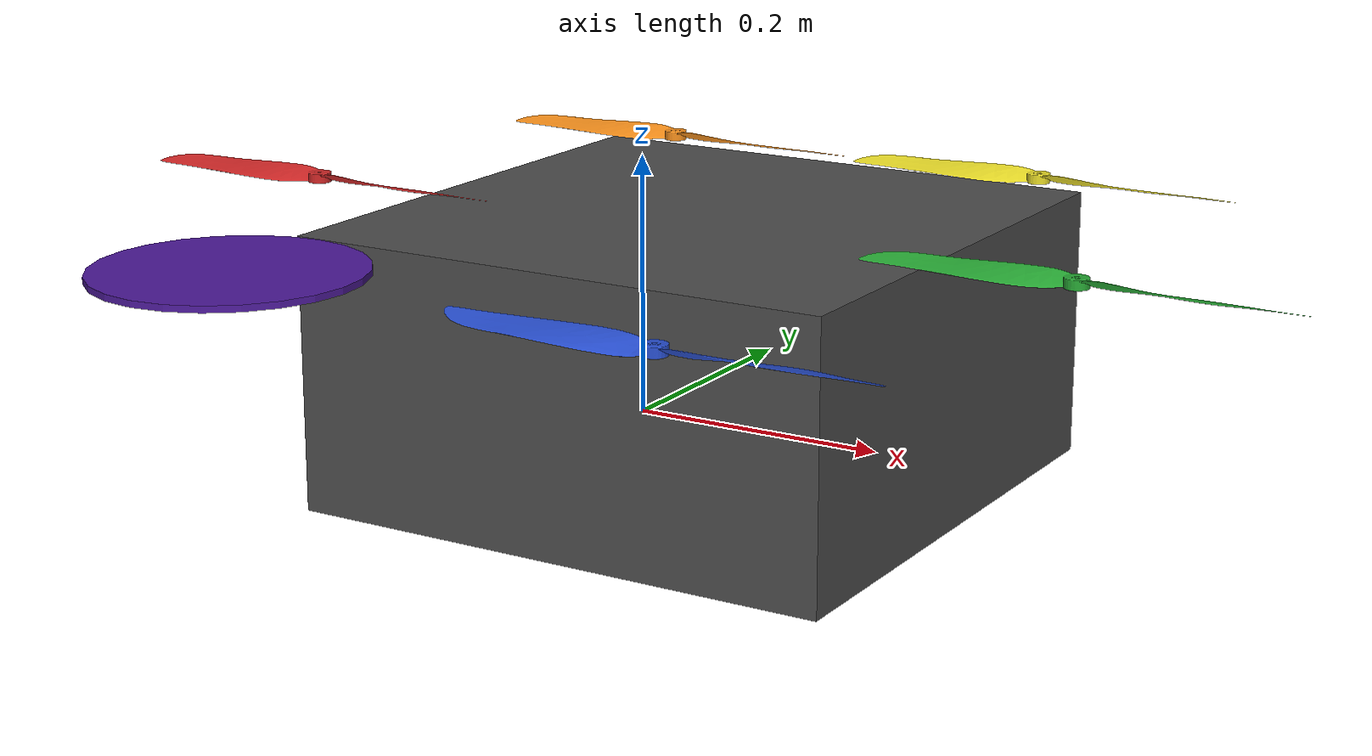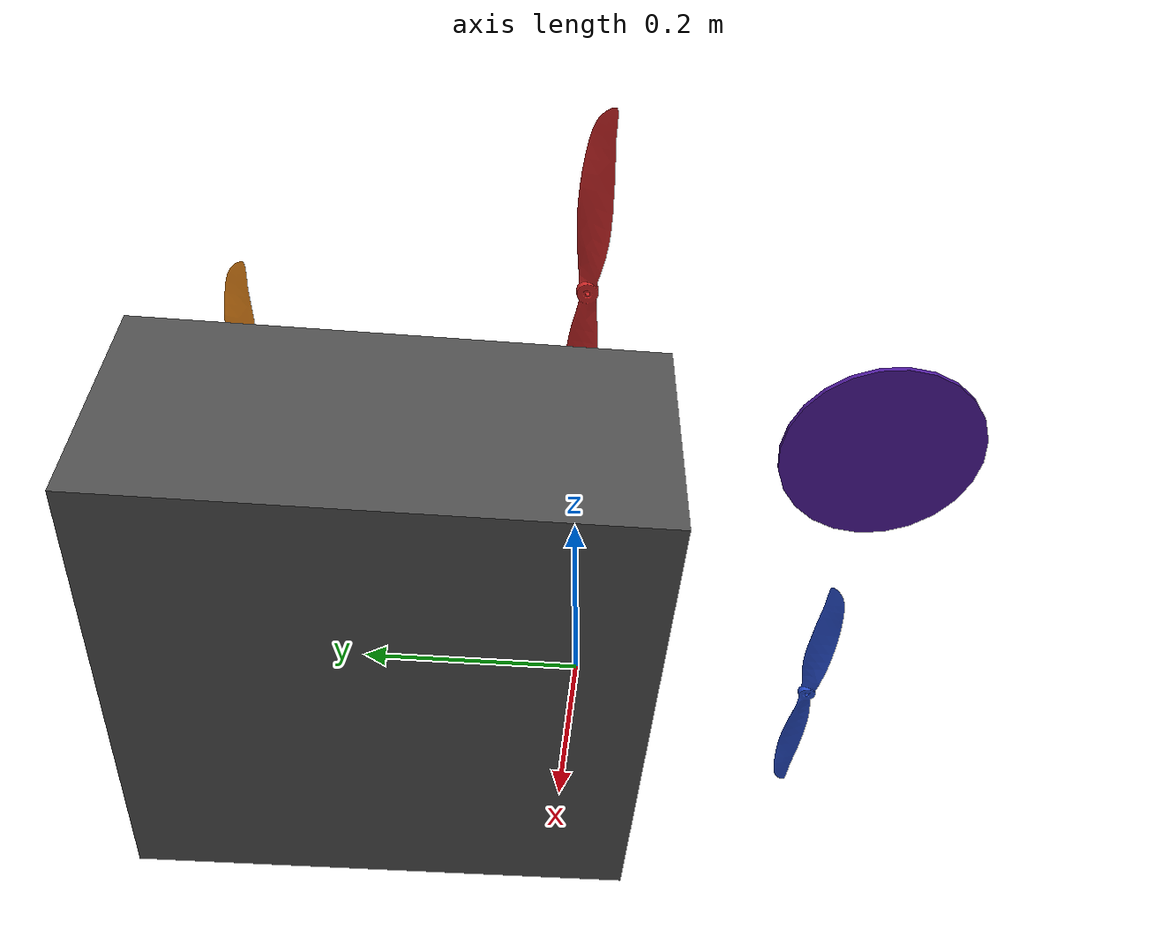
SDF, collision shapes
<?xml version='1.0'?>
<sdf version="1.6" >
  <model name="hexa_drone_with_camera">
    <include>
      <uri>model://hexacopter_v2_mbk</uri>
    </include>

    <link name="cam_link">
      <pose>0 0 -0.02 0 0 0 </pose>
      <inertial>
        <mass>0.01</mass>
        <inertia>
          <ixx>0.001</ixx>
          <iyy>0.001</iyy>
          <izz>0.001</izz>
        </inertia>
      </inertial>

      <visual name='cam_link'>
    	<pose>0 0 0.15 0 1.5707 0</pose>
    	<geometry>
    		<cylinder>
    			<radius>.005</radius>
    			<length>.018</length>
    		</cylinder>
    	</geometry>
    </visual>
    <sensor name="cam" type="camera" >
      <pose>0 0 0.15 0 0 0</pose>
      <camera>
        <horizontal_fov>1.2</horizontal_fov>
        <image>
          <width>640</width>
          <height>480</height>
        </image>
        <clip>
          <near>0.1</near>
          <far>1000</far>
        </clip>
      </camera>
      <always_on>1</always_on>
      <update_rate>30</update_rate>
      <visualize>true</visualize>
      <plugin name="camera_controller" filename="libgazebo_ros_camera.so">
        <always_on>true</always_on>
        <update_rate>30</update_rate>
        <cameraName>webcam</cameraName>
        <imageTopicName>image_raw</imageTopicName>
        <cameraInfoTopicName>camera_info</cameraInfoTopicName>
        <frameName>camera_link</frameName>
      </plugin>
    </sensor>
    </link>
    <joint name="camera_mount" type="fixed">
      <child>cam_link</child>
      <parent>hexacopter::base_link</parent>
      <axis>
        <xyz>0 0 1</xyz>
        <limit>
          <upper>0</upper>
          <lower>0</lower>
        </limit>
      </axis>
    </joint>

   <!--MBK isd commenting out all the following lines, these were the plugins included
    for Quadcopter-->
    <!-- plugins -->

  </model>
</sdf>

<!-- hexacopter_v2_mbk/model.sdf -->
<sdf version='1.6'>
  <model name='hexacopter'>
    <pose>-0.05 0.175 0 0 0 0</pose>
    <link name='base_link'>

     <velocity_decay>
        <linear>0.0</linear>
        <angular>0.0</angular>
      </velocity_decay>

      <inertial>
        <pose>0.062869 -0.16 0.05 0 0 0</pose>
        <mass>2.48936</mass>
       <inertia>

          <ixx>0.05</ixx>
          <ixy>0</ixy>
          <ixz>0</ixz>
          <iyy>0.05</iyy>
          <iyz>0</iyz>
          <izz>0.05</izz>

        </inertia>
      </inertial>

      <collision name='base_link_collision'>
        <pose>0 0 0 0 -0 0</pose>
        <max_contacts>10</max_contacts>

        <geometry>
         <box>
            <size>0.47 0.47 0.23</size>
          </box>
        </geometry>

        <surface>
          <contact>
            <ode>
              <max_vel>100.0</max_vel>
              <min_depth>0.001</min_depth>
            </ode>
          </contact>
          <friction>
            <ode>
              <mu>1.0</mu>
              <mu2>1.0</mu2>
            </ode>
          </friction>
        </surface>
      </collision>

      <visual name='base_link_visual'>
        <geometry>
          <mesh>
            <uri>model://hexacopter/meshes/base_link.STL </uri>

          </mesh>
        </geometry>
        <material>
           <script>
            <name>Gazebo/DarkGrey</name>
          </script>
        </material> <!-- End wheel material -->

      </visual>
    </link>

    <!--The following code is inlcuded by MBK , the code is copied from iris_with_ardupilot
    THE Purpose of the code is to include IMU sensor in the Hexacopter-->

      <link name='hexacopter/ground_truth/odometry_sensorgt_link'>
      <pose>0 0 0 0 -0 0</pose>
      <inertial>
        <pose>0.06 -0.16 0.05 0 -0 0</pose>
        <mass>0.25</mass>
        <inertia>
          <ixx>0.04</ixx>
          <ixy>0</ixy>
          <ixz>0</ixz>
          <iyy>0.04</iyy>
          <iyz>0</iyz>
          <izz>0.04</izz>
        </inertia>
      </inertial>
    </link>
    <joint name='hexacopter/ground_truth/odometry_sensorgt_joint' type='revolute'>
      <child>hexacopter/ground_truth/odometry_sensorgt_link</child>
      <parent>base_link</parent>
      <axis>
        <xyz>0 0 1</xyz>
        <limit>
          <lower>0</lower>
          <upper>0</upper>
          <effort>0</effort>
          <velocity>0</velocity>
        </limit>
        <dynamics>
          <damping>1.0</damping>
        </dynamics>
        <use_parent_model_frame>1</use_parent_model_frame>
      </axis>
      <physics>
        <ode>
          <implicit_spring_damper>1</implicit_spring_damper>
        </ode>
      </physics>
    </joint>
    <link name='hexacopter/imu_link'>
      <inertial>
        <pose>0.06 -0.16 0.05 0 0 0</pose>
        <mass>0.25</mass>
        <inertia>
          <ixx>0.04</ixx>
          <ixy>0</ixy>
          <ixz>0</ixz>
          <iyy>0.04</iyy>
          <iyz>0</iyz>
          <izz>0.04</izz>
        </inertia>
      </inertial>
      <sensor name="imu_sensor" type="imu">
        <pose>0 0 0 3.141593 0 0</pose>
        <always_on>1</always_on>
        <update_rate>1000.0</update_rate>
      </sensor>
    </link>
    <joint name='hexacopter/imu_joint' type='revolute'>
      <child>hexacopter/imu_link</child>
      <parent>base_link</parent>
      <axis>
        <xyz>0 0 1</xyz>
        <limit>
          <lower>0</lower>
          <upper>0</upper>
          <effort>0</effort>
          <velocity>0</velocity>
        </limit>
        <dynamics>
          <damping>1.0</damping>
        </dynamics>
        <use_parent_model_frame>1</use_parent_model_frame>
      </axis>
      <physics>
        <ode>
          <implicit_spring_damper>1</implicit_spring_damper>
        </ode>
      </physics>
    </joint>
    <link name='Prop_1'>
      <pose>-0.11272 -0.45839 0.15018 0 -0 0</pose>
      <inertial>
        <pose>0 0 0 0 0 0</pose>
        <mass>0.013</mass>
        <inertia>
          <ixx>0.000001970</ixx>
          <ixy>0</ixy>
          <ixz>0</ixz>
          <iyy>0.00007508</iyy>
          <iyz>0</iyz>
          <izz>0.00007562</izz>

        </inertia>
      </inertial>

  <collision name='Prop_1_collision'>
      <pose>0 0 0 0 -0 0</pose>
        <geometry>
          <cylinder>
            <length>0.005</length>
            <radius>0.1</radius>
          </cylinder>
        </geometry>
        <surface>
          <contact>
            <ode/>
          </contact>
          <friction>
            <ode/>
          </friction>
        </surface>
      </collision>

      <visual name='Prop_1_visual'>
        <pose >0 0 0 0 -0 0</pose>
        <geometry>
          <mesh>
            <scale>1 1 1</scale>
            <uri>model://hexacopter/meshes/Prop_1.dae</uri>
          </mesh>
        </geometry>

        <material>
          <script>
            <name>Gazebo/Indigo</name>
            <uri>__default__</uri>
          </script>
        </material>
      </visual>

      <gravity>1</gravity>
      <velocity_decay/>
      <self_collide>0</self_collide>
     </link>

<joint name='Prop_1_joint' type='revolute'>
      <child>Prop_1</child>
      <parent>base_link</parent>

      <axis>
        <xyz>0 0 1</xyz>
        <limit>
          <lower>-1e+16</lower>
          <upper>1e+16</upper>
        </limit>
        <dynamics>
          <damping>0.004</damping>
        </dynamics>
        <use_parent_model_frame>1</use_parent_model_frame>
      </axis>
      <physics>
        <ode>
          <implicit_spring_damper>1</implicit_spring_damper>
        </ode>
      </physics>
    </joint>

    <link name='Prop_2'>
      <pose frame=''>0.23457 -0.45839 0.14018 3.14 -0 0</pose>
      <inertial>
        <pose frame=''>2e-06 0 -0.005964 0 -0 0</pose>
        <mass>0.013</mass>
        <inertia>
          <ixx>0.000001970</ixx>
          <ixy>0</ixy>
          <ixz>0</ixz>
          <iyy>0.00007508</iyy>
          <iyz>0</iyz>
          <izz>0.00007562</izz>
        </inertia>
      </inertial>
      <self_collide>0</self_collide>
      <enable_wind>0</enable_wind>
      <kinematic>0</kinematic>
      <gravity>1</gravity>
      <velocity_decay/>
      <visual name='Prop_2_visual'>
        <pose frame=''>0 0 0 0 -0 0</pose>
        <geometry>
          <mesh>
            <scale>1 1 1</scale>
            <uri>model://hexacopter/meshes/Prop_2.dae</uri>
          </mesh>
        </geometry>
        <material>
          <script>
            <name>Gazebo/Blue</name>
            <uri>__default__</uri>
          </script>
        </material>
        <transparency>0</transparency>
        <cast_shadows>1</cast_shadows>
      </visual>
      <collision name='Prop_2_collision'>
        <laser_retro>0</laser_retro>
        <max_contacts>10</max_contacts>
        <pose frame=''>0 0 0 0 -0 0</pose>
        <geometry>
          <mesh>
             <uri>model://hexacopter/meshes/Prop_2.dae</uri>
            <scale>1 1 1</scale>
          </mesh>
        </geometry>
        <surface>
          <friction>
            <ode>
              <mu>1</mu>
              <mu2>1</mu2>
              <fdir1>0 0 0</fdir1>
              <slip1>0</slip1>
              <slip2>0</slip2>
            </ode>
            <torsional>
              <coefficient>1</coefficient>
              <patch_radius>0</patch_radius>
              <surface_radius>0</surface_radius>
              <use_patch_radius>1</use_patch_radius>
              <ode>
                <slip>0</slip>
              </ode>
            </torsional>
          </friction>
          <bounce>
            <restitution_coefficient>0</restitution_coefficient>
            <threshold>1e+06</threshold>
          </bounce>
          <contact>
            <collide_without_contact>0</collide_without_contact>
            <collide_without_contact_bitmask>1</collide_without_contact_bitmask>
            <collide_bitmask>1</collide_bitmask>
            <ode>
              <soft_cfm>0</soft_cfm>
              <soft_erp>0.2</soft_erp>
              <kp>1e+13</kp>
              <kd>1</kd>
              <max_vel>0.01</max_vel>
              <min_depth>0</min_depth>
            </ode>
            <bullet>
              <split_impulse>1</split_impulse>
              <split_impulse_penetration_threshold>-0.01</split_impulse_penetration_threshold>
              <soft_cfm>0</soft_cfm>
              <soft_erp>0.2</soft_erp>
              <kp>1e+13</kp>
              <kd>1</kd>
            </bullet>
          </contact>
        </surface>
      </collision>
    </link>

    <joint name='Prop_2_joint' type='revolute'>
      <parent>base_link</parent>
      <child>Prop_2</child>
      <pose frame=''>0 0 0 0 -0 0</pose>
      <axis>
        <xyz>0 0 1</xyz>
        <use_parent_model_frame>1</use_parent_model_frame>
        <limit>
          <lower>-1e+16</lower>
          <upper>1e+16</upper>
        </limit>
        <dynamics>
          <spring_reference>0</spring_reference>
          <spring_stiffness>0</spring_stiffness>
          <damping>0</damping>
          <friction>0</friction>
        </dynamics>
      </axis>
      <physics>
        <ode>
        <implicit_spring_damper>1</implicit_spring_damper>
          <limit>
            <cfm>0</cfm>
            <erp>0.2</erp>
          </limit>
          <suspension>
            <cfm>0</cfm>
            <erp>0.2</erp>
          </suspension>
        </ode>
      </physics>
    </joint>

    <link name='Prop_3'>
      <pose>0.39429 -0.15764 0.14958 0 -0 0</pose>
      <inertial>
        <pose frame=''>2e-06 0 -0.005964 0 -0 0</pose>
        <mass>0.013</mass>
        <inertia>
          <ixx>0.000001970</ixx>
          <ixy>0</ixy>
          <ixz>0</ixz>
          <iyy>0.00007508</iyy>
          <iyz>0</iyz>
          <izz>0.00007562</izz>
        </inertia>
      </inertial>
      <self_collide>0</self_collide>
      <enable_wind>0</enable_wind>
      <kinematic>0</kinematic>
      <gravity>1</gravity>
      <velocity_decay/>
      <visual name='Prop_3_visual'>
        <pose frame=''>0 0 0 0 -0 0</pose>
        <geometry>
          <mesh>
            <scale>1 1 1</scale>
            <uri>model://hexacopter/meshes/Prop_3.dae</uri>
            </mesh>
        </geometry>
        <material>
          <script>
            <name>Gazebo/Green</name>
            <uri>__default__</uri>
          </script>
        </material>
        <transparency>0</transparency>
        <cast_shadows>1</cast_shadows>
      </visual>
      <collision name='Prop_3_collision'>
        <laser_retro>0</laser_retro>
        <max_contacts>10</max_contacts>
        <pose frame=''>0 0 0 0 -0 0</pose>
        <geometry>
          <mesh>
             <uri>model://hexacopter/meshes/Prop_3.dae</uri>
            <scale>1 1 1</scale>
          </mesh>
        </geometry>
        <surface>
          <friction>
            <ode>
              <mu>1</mu>
              <mu2>1</mu2>
              <fdir1>0 0 0</fdir1>
              <slip1>0</slip1>
              <slip2>0</slip2>
            </ode>
            <torsional>
              <coefficient>1</coefficient>
              <patch_radius>0</patch_radius>
              <surface_radius>0</surface_radius>
              <use_patch_radius>1</use_patch_radius>
              <ode>
                <slip>0</slip>
              </ode>
            </torsional>
          </friction>
          <bounce>
            <restitution_coefficient>0</restitution_coefficient>
            <threshold>1e+06</threshold>
          </bounce>
          <contact>
            <collide_without_contact>0</collide_without_contact>
            <collide_without_contact_bitmask>1</collide_without_contact_bitmask>
            <collide_bitmask>1</collide_bitmask>
            <ode>
              <soft_cfm>0</soft_cfm>
              <soft_erp>0.2</soft_erp>
              <kp>1e+13</kp>
              <kd>1</kd>
              <max_vel>0.01</max_vel>
              <min_depth>0</min_depth>
            </ode>
            <bullet>
              <split_impulse>1</split_impulse>
              <split_impulse_penetration_threshold>-0.01</split_impulse_penetration_threshold>
              <soft_cfm>0</soft_cfm>
              <soft_erp>0.2</soft_erp>
              <kp>1e+13</kp>
              <kd>1</kd>
            </bullet>
          </contact>
        </surface>
      </collision>
    </link>

  <joint name='Prop_3_joint' type='revolute'>
      <parent>base_link</parent>
      <child>Prop_3</child>
      <pose frame=''>0 0 0 0 -0 0</pose>
      <axis>
        <xyz>0 0 1</xyz>
        <use_parent_model_frame>1</use_parent_model_frame>
        <limit>
          <lower>-1e+16</lower>
          <upper>1e+16</upper>
        </limit>
        <dynamics>
          <spring_reference>0</spring_reference>
          <spring_stiffness>0</spring_stiffness>
          <damping>0</damping>
          <friction>0</friction>
        </dynamics>
      </axis>
      <physics>
        <ode>
        <implicit_spring_damper>1</implicit_spring_damper>
          <limit>
            <cfm>0</cfm>
            <erp>0.2</erp>
          </limit>
          <suspension>
            <cfm>0</cfm>
            <erp>0.2</erp>
          </suspension>
        </ode>
      </physics>
    </joint>

    <link name='Prop_4'>
      <pose >0.23457 0.14305 0.15018 0 -0 0</pose>
      <inertial>
        <pose frame=''>2e-06 0 -0.005964 0 -0 0</pose>
        <mass>0.013</mass>
        <inertia>
          <ixx>0.000001970</ixx>
          <ixy>0</ixy>
          <ixz>0</ixz>
          <iyy>0.00007508</iyy>
          <iyz>0</iyz>
          <izz>0.00007562</izz>
        </inertia>
      </inertial>
      <self_collide>0</self_collide>
      <enable_wind>0</enable_wind>
      <kinematic>0</kinematic>
      <gravity>1</gravity>
      <velocity_decay/>
      <visual name='Prop_4_visual'>
        <pose frame=''>0 0 0 0 -0 0</pose>
        <geometry>
          <mesh>
            <scale>1 1 1</scale>
            <uri>model://hexacopter/meshes/Prop_4.dae</uri>
          </mesh>
        </geometry>
        <material>
          <script>
            <name>Gazebo/Yellow</name>
            <uri>__default__</uri>
          </script>
        </material>
        <transparency>0</transparency>
        <cast_shadows>1</cast_shadows>
      </visual>
      <collision name='Prop_4_collision'>
        <laser_retro>0</laser_retro>
        <max_contacts>10</max_contacts>
        <pose frame=''>0 0 0 0 -0 0</pose>
        <geometry>
          <mesh>
             <uri>model://hexacopter/meshes/Prop_4.dae</uri>
            <scale>1 1 1</scale>
          </mesh>
        </geometry>
        <surface>
          <friction>
            <ode>
              <mu>1</mu>
              <mu2>1</mu2>
              <fdir1>0 0 0</fdir1>
              <slip1>0</slip1>
              <slip2>0</slip2>
            </ode>
            <torsional>
              <coefficient>1</coefficient>
              <patch_radius>0</patch_radius>
              <surface_radius>0</surface_radius>
              <use_patch_radius>1</use_patch_radius>
              <ode>
                <slip>0</slip>
              </ode>
            </torsional>
          </friction>
          <bounce>
            <restitution_coefficient>0</restitution_coefficient>
            <threshold>1e+06</threshold>
          </bounce>
          <contact>
            <collide_without_contact>0</collide_without_contact>
            <collide_without_contact_bitmask>1</collide_without_contact_bitmask>
            <collide_bitmask>1</collide_bitmask>
            <ode>
              <soft_cfm>0</soft_cfm>
              <soft_erp>0.2</soft_erp>
              <kp>1e+13</kp>
              <kd>1</kd>
              <max_vel>0.01</max_vel>
              <min_depth>0</min_depth>
            </ode>
            <bullet>
              <split_impulse>1</split_impulse>
              <split_impulse_penetration_threshold>-0.01</split_impulse_penetration_threshold>
              <soft_cfm>0</soft_cfm>
              <soft_erp>0.2</soft_erp>
              <kp>1e+13</kp>
              <kd>1</kd>
            </bullet>
          </contact>
        </surface>
      </collision>
    </link>

 <joint name='Prop_4_joint' type='revolute'>
      <parent>base_link</parent>
      <child>Prop_4</child>
      <pose frame=''>0 0 0 0 -0 0</pose>
      <axis>
        <xyz>0 0 1</xyz>
        <use_parent_model_frame>1</use_parent_model_frame>
        <limit>
          <lower>-1e+16</lower>
          <upper>1e+16</upper>
        </limit>
        <dynamics>
          <spring_reference>0</spring_reference>
          <spring_stiffness>0</spring_stiffness>
          <damping>0</damping>
          <friction>0</friction>
        </dynamics>
      </axis>
      <physics>
        <ode>
        <implicit_spring_damper>1</implicit_spring_damper>
          <limit>
            <cfm>0</cfm>
            <erp>0.2</erp>
          </limit>
          <suspension>
            <cfm>0</cfm>
            <erp>0.2</erp>
          </suspension>
        </ode>
      </physics>
    </joint>

    <link name='Prop_5'>
      <pose>-0.11272 0.14304 0.15018 0 -0 0</pose>
      <inertial>
        <pose frame=''>2e-06 0 -0.005964 0 -0 0</pose>
        <mass>0.013</mass>
        <inertia>
          <ixx>0.000001970</ixx>
          <ixy>0</ixy>
          <ixz>0</ixz>
          <iyy>0.00007508</iyy>
          <iyz>0</iyz>
          <izz>0.00007562</izz>
        </inertia>
      </inertial>
      <self_collide>0</self_collide>
      <enable_wind>0</enable_wind>
      <kinematic>0</kinematic>
      <gravity>1</gravity>
      <velocity_decay/>
      <visual name='Prop_5_visual'>
        <pose frame=''>0 0 0 0 -0 0</pose>
        <geometry>
          <mesh>
            <scale>1 1 1</scale>
            <uri>model://hexacopter/meshes/Prop_5.dae</uri>
          </mesh>
        </geometry>
        <material>
          <script>
            <name>Gazebo/Orange</name>
            <uri>__default__</uri>
          </script>
        </material>
        <transparency>0</transparency>
        <cast_shadows>1</cast_shadows>
      </visual>
      <collision name='Prop_5_collision'>
        <laser_retro>0</laser_retro>
        <max_contacts>10</max_contacts>
        <pose frame=''>0 0 0 0 -0 0</pose>
        <geometry>
          <mesh>
             <uri>model://hexacopter/meshes/Prop_5.dae</uri>
            <scale>1 1 1</scale>
          </mesh>
        </geometry>
        <surface>
          <friction>
            <ode>
              <mu>1</mu>
              <mu2>1</mu2>
              <fdir1>0 0 0</fdir1>
              <slip1>0</slip1>
              <slip2>0</slip2>
            </ode>
            <torsional>
              <coefficient>1</coefficient>
              <patch_radius>0</patch_radius>
              <surface_radius>0</surface_radius>
              <use_patch_radius>1</use_patch_radius>
              <ode>
                <slip>0</slip>
              </ode>
            </torsional>
          </friction>
          <bounce>
            <restitution_coefficient>0</restitution_coefficient>
            <threshold>1e+06</threshold>
          </bounce>
          <contact>
            <collide_without_contact>0</collide_without_contact>
            <collide_without_contact_bitmask>1</collide_without_contact_bitmask>
            <collide_bitmask>1</collide_bitmask>
            <ode>
              <soft_cfm>0</soft_cfm>
              <soft_erp>0.2</soft_erp>
              <kp>1e+13</kp>
              <kd>1</kd>
              <max_vel>0.01</max_vel>
              <min_depth>0</min_depth>
            </ode>
            <bullet>
              <split_impulse>1</split_impulse>
              <split_impulse_penetration_threshold>-0.01</split_impulse_penetration_threshold>
              <soft_cfm>0</soft_cfm>
              <soft_erp>0.2</soft_erp>
              <kp>1e+13</kp>
              <kd>1</kd>
            </bullet>
          </contact>
        </surface>
      </collision>
    </link>

 <joint name='Prop_5_joint' type='revolute'>
      <parent>base_link</parent>
      <child>Prop_5</child>
      <pose frame=''>0 0 0 0 -0 0</pose>
      <axis>
        <xyz>0 0 1</xyz>
        <use_parent_model_frame>1</use_parent_model_frame>
        <limit>
          <lower>-1e+16</lower>
          <upper>1e+16</upper>
        </limit>
        <dynamics>
          <spring_reference>0</spring_reference>
          <spring_stiffness>0</spring_stiffness>
          <damping>0</damping>
          <friction>0</friction>
        </dynamics>
      </axis>
      <physics>
        <ode>
        <implicit_spring_damper>1</implicit_spring_damper>
          <limit>
            <cfm>0</cfm>
            <erp>0.2</erp>
          </limit>
          <suspension>
            <cfm>0</cfm>
            <erp>0.2</erp>
          </suspension>
        </ode>
      </physics>
    </joint>

    <link name='Prop_6'>
      <pose>-0.27243 -0.15764 0.15006 0 -0 0</pose>
      <inertial>
        <pose>2e-06 0 -0.005964 0 -0 0</pose>
        <mass>0.013</mass>
        <inertia>
          <ixx>0.000001970</ixx>
          <ixy>0</ixy>
          <ixz>0</ixz>
          <iyy>0.00007508</iyy>
          <iyz>0</iyz>
          <izz>0.00007562</izz>
        </inertia>
      </inertial>
      <self_collide>0</self_collide>
      <enable_wind>0</enable_wind>
      <kinematic>0</kinematic>
      <gravity>1</gravity>
      <velocity_decay/>
      <visual name='Prop_6_visual'>
        <pose frame=''>0 0 0 0 -0 0</pose>
        <geometry>
          <mesh>
            <scale>1 1 1</scale>
            <uri>model://hexacopter/meshes/Prop_6.dae</uri>
          </mesh>
        </geometry>
        <material>
          <script>
            <name>Gazebo/Red</name>
            <uri>__default__</uri>
          </script>
        </material>
        <transparency>0</transparency>
        <cast_shadows>1</cast_shadows>
      </visual>
      <collision name='Prop_6_collision'>
        <laser_retro>0</laser_retro>
        <max_contacts>10</max_contacts>
        <pose frame=''>0 0 0 0 -0 0</pose>
        <geometry>
          <mesh>
             <uri>model://hexacopter/meshes/Prop_6.dae</uri>
            <scale>1 1 1</scale>
          </mesh>
        </geometry>
        <surface>
          <friction>
            <ode>
              <mu>1</mu>
              <mu2>1</mu2>
              <fdir1>0 0 0</fdir1>
              <slip1>0</slip1>
              <slip2>0</slip2>
            </ode>
            <torsional>
              <coefficient>1</coefficient>
              <patch_radius>0</patch_radius>
              <surface_radius>0</surface_radius>
              <use_patch_radius>1</use_patch_radius>
              <ode>
                <slip>0</slip>
              </ode>
            </torsional>
          </friction>
          <bounce>
            <restitution_coefficient>0</restitution_coefficient>
            <threshold>1e+06</threshold>
          </bounce>
          <contact>
            <collide_without_contact>0</collide_without_contact>
            <collide_without_contact_bitmask>1</collide_without_contact_bitmask>
            <collide_bitmask>1</collide_bitmask>
            <ode>
              <soft_cfm>0</soft_cfm>
              <soft_erp>0.2</soft_erp>
              <kp>1e+13</kp>
              <kd>1</kd>
              <max_vel>0.01</max_vel>
              <min_depth>0</min_depth>
            </ode>
            <bullet>
              <split_impulse>1</split_impulse>
              <split_impulse_penetration_threshold>-0.01</split_impulse_penetration_threshold>
              <soft_cfm>0</soft_cfm>
              <soft_erp>0.2</soft_erp>
              <kp>1e+13</kp>
              <kd>1</kd>
            </bullet>
          </contact>
        </surface>
      </collision>
    </link>

 <joint name='Prop_6_joint' type='revolute'>
      <parent>base_link</parent>
      <child>Prop_6</child>
      <pose frame=''>0 0 0 0 -0 0</pose>
      <axis>
        <xyz>0 0 1</xyz>
        <use_parent_model_frame>1</use_parent_model_frame>
        <limit>
          <lower>-1e+16</lower>
          <upper>1e+16</upper>
        </limit>
        <dynamics>
          <spring_reference>0</spring_reference>
          <spring_stiffness>0</spring_stiffness>
          <damping>0</damping>
          <friction>0</friction>
        </dynamics>
      </axis>
      <physics>
        <ode>
        <implicit_spring_damper>1</implicit_spring_damper>
          <limit>
            <cfm>0</cfm>
            <erp>0.2</erp>
          </limit>
          <suspension>
            <cfm>0</cfm>
            <erp>0.2</erp>
          </suspension>
        </ode>
      </physics>
    </joint>

    <static>0</static>
    <allow_auto_disable>1</allow_auto_disable>

    <!-- plugins -->
    <plugin name="Prop_1_blade_1" filename="libLiftDragPlugin.so">
      <a0>0.3</a0>
      <alpha_stall>1.4</alpha_stall>
      <cla>4.2500</cla>
      <cda>0.10</cda>
      <cma>0.00</cma>
      <cla_stall>-0.025</cla_stall>
      <cda_stall>0.0</cda_stall>
      <cma_stall>0.0</cma_stall>
      <area>0.002</area>
      <air_density>1.2041</air_density>
      <cp>0.084 0 0</cp>
      <forward>0 1 0</forward>
      <upward>0 0 1</upward>
      <link_name>Prop_1</link_name>
    </plugin>
    <plugin name="Prop_1_blade_2" filename="libLiftDragPlugin.so">
      <a0>0.3</a0>
      <alpha_stall>1.4</alpha_stall>
      <cla>4.2500</cla>
      <cda>0.10</cda>
      <cma>0.00</cma>
      <cla_stall>-0.025</cla_stall>
      <cda_stall>0.0</cda_stall>
      <cma_stall>0.0</cma_stall>
      <area>0.002</area>
      <air_density>1.2041</air_density>
      <cp>-0.084 0 0</cp>
      <forward>0 -1 0</forward>
      <upward>0 0 1</upward>
      <link_name>Prop_1</link_name>
    </plugin>

    <plugin name="Prop_2_blade_1" filename="libLiftDragPlugin.so">
      <a0>0.3</a0>
      <alpha_stall>1.4</alpha_stall>
      <cla>4.2500</cla>
      <cda>0.10</cda>
      <cma>0.00</cma>
      <cla_stall>-0.025</cla_stall>
      <cda_stall>0.0</cda_stall>
      <cma_stall>0.0</cma_stall>
      <area>0.002</area>
      <air_density>1.2041</air_density>
      <cp>0.084 0 0</cp>
      <forward>0 1 0</forward>
      <upward>0 0 1</upward>
      <link_name>Prop_2</link_name>

    </plugin>
    <plugin name="Prop_2_blade_2" filename="libLiftDragPlugin.so">
      <a0>0.3</a0>
      <alpha_stall>1.4</alpha_stall>
      <cla>4.2500</cla>
      <cda>0.10</cda>
      <cma>0.00</cma>
      <cla_stall>-0.025</cla_stall>
      <cda_stall>0.0</cda_stall>
      <cma_stall>0.0</cma_stall>
      <area>0.002</area>
      <air_density>1.2041</air_density>
      <cp>-0.084 0 0</cp>
      <forward>0 -1 0</forward>
      <upward>0 0 1</upward>
      <link_name>Prop_2</link_name>

    </plugin>

    <plugin name="Prop_3_blade_1" filename="libLiftDragPlugin.so">
      <a0>0.3</a0>
      <alpha_stall>1.4</alpha_stall>
      <cla>4.2500</cla>
      <cda>0.10</cda>
      <cma>0.00</cma>
      <cla_stall>-0.025</cla_stall>
      <cda_stall>0.0</cda_stall>
      <cma_stall>0.0</cma_stall>
      <area>0.002</area>
      <air_density>1.2041</air_density>
      <cp>0.084 0 0</cp>
      <forward>0 -1 0</forward>
      <upward>0 0 1</upward>
      <link_name>Prop_3</link_name>
    </plugin>
    <plugin name="Prop_3_blade_2" filename="libLiftDragPlugin.so">
      <a0>0.3</a0>
      <alpha_stall>1.4</alpha_stall>
      <cla>4.2500</cla>
      <cda>0.10</cda>
      <cma>0.00</cma>
      <cla_stall>-0.025</cla_stall>
      <cda_stall>0.0</cda_stall>
      <cma_stall>0.0</cma_stall>
      <area>0.002</area>
      <air_density>1.2041</air_density>
      <cp>-0.084 0 0</cp>
      <forward>0 1 0</forward>
      <upward>0 0 1</upward>
      <link_name>Prop_3</link_name>
    </plugin>

    <plugin name="Prop_4_blade_1" filename="libLiftDragPlugin.so">
      <a0>0.3</a0>
      <alpha_stall>1.4</alpha_stall>
      <cla>4.2500</cla>
      <cda>0.10</cda>
      <cma>0.00</cma>
      <cla_stall>-0.025</cla_stall>
      <cda_stall>0.0</cda_stall>
      <cma_stall>0.0</cma_stall>
      <area>0.002</area>
      <air_density>1.2041</air_density>
      <cp>0.084 0 0</cp>
      <forward>0 -1 0</forward>
      <upward>0 0 1</upward>
      <link_name>Prop_4</link_name>
    </plugin>
    <plugin name="Prop_4_blade_2" filename="libLiftDragPlugin.so">
      <a0>0.3</a0>
      <alpha_stall>1.4</alpha_stall>
      <cla>4.2500</cla>
      <cda>0.10</cda>
      <cma>0.00</cma>
      <cla_stall>-0.025</cla_stall>
      <cda_stall>0.0</cda_stall>
      <cma_stall>0.0</cma_stall>
      <area>0.002</area>
      <air_density>1.2041</air_density>
      <cp>-0.084 0 0</cp>
      <forward>0 1 0</forward>
      <upward>0 0 1</upward>
      <link_name>Prop_4</link_name>

    </plugin>

    <plugin name="Prop_5_blade_1" filename="libLiftDragPlugin.so">
      <a0>0.3</a0>
      <alpha_stall>1.4</alpha_stall>
      <cla>4.2500</cla>
      <cda>0.10</cda>
      <cma>0.00</cma>
      <cla_stall>-0.025</cla_stall>
      <cda_stall>0.0</cda_stall>
      <cma_stall>0.0</cma_stall>
      <area>0.002</area>
      <air_density>1.2041</air_density>
      <cp>0.084 0 0</cp>
      <forward>0 -1 0</forward>
      <upward>0 0 1</upward>
      <link_name>Prop_5</link_name>
    </plugin>
    <plugin name="Prop_5_blade_2" filename="libLiftDragPlugin.so">
      <a0>0.3</a0>
      <alpha_stall>1.4</alpha_stall>
      <cla>4.2500</cla>
      <cda>0.10</cda>
      <cma>0.00</cma>
      <cla_stall>-0.025</cla_stall>
      <cda_stall>0.0</cda_stall>
      <cma_stall>0.0</cma_stall>
      <area>0.002</area>
      <air_density>1.2041</air_density>
      <cp>-0.084 0 0</cp>
      <forward>0 1 0</forward>
      <upward>0 0 1</upward>
      <link_name>Prop_5</link_name>

    </plugin>

    <plugin name="Prop_6_blade_1" filename="libLiftDragPlugin.so">
      <a0>0.3</a0>
      <alpha_stall>1.4</alpha_stall>
      <cla>4.2500</cla>
      <cda>0.10</cda>
      <cma>0.00</cma>
      <cla_stall>-0.025</cla_stall>
      <cda_stall>0.0</cda_stall>
      <cma_stall>0.0</cma_stall>
      <area>0.002</area>
      <air_density>1.2041</air_density>
      <cp>0.084 0 0</cp>
      <forward>0 -1 0</forward>
      <upward>0 0 1</upward>
      <link_name>Prop_6</link_name>
    </plugin>
    <plugin name="Prop_6_blade_2" filename="libLiftDragPlugin.so">
      <a0>0.3</a0>
      <alpha_stall>1.4</alpha_stall>
      <cla>4.2500</cla>
      <cda>0.10</cda>
      <cma>0.00</cma>
      <cla_stall>-0.025</cla_stall>
      <cda_stall>0.0</cda_stall>
      <cma_stall>0.0</cma_stall>
      <area>0.002</area>
      <air_density>1.2041</air_density>
      <cp>-0.084 0 0</cp>
      <forward>0 1 0</forward>
      <upward>0 0 1</upward>
      <link_name>Prop_6</link_name>

    </plugin>

    <plugin name="arducopter_plugin" filename="libArduPilotPlugin.so">
      <fdm_addr>127.0.0.1</fdm_addr>
      <fdm_port_in>9002</fdm_port_in>
      <fdm_port_out>9003</fdm_port_out>
      <!--
          Require by APM :
          Only change model and gazebo from XYZ to XY-Z coordinates
      -->
      <modelXYZToAirplaneXForwardZDown>0 0 0 3.141593 0 0</modelXYZToAirplaneXForwardZDown>
      <gazeboXYZToNED>0 0 0 3.141593 0 0</gazeboXYZToNED>
      <imuName>hexacopter/imu_link::imu_sensor</imuName>
      <connectionTimeoutMaxCount>5</connectionTimeoutMaxCount>
      <control channel="Prop_3">
      <!--
          incoming control command [0, 1]
          so offset it by 0 to get [0, 1]
          and divide max target by 1.
          offset = 0
          multiplier = 838 max rpm / 1 = 838
        -->
        <type>VELOCITY</type>
        <offset>0</offset>
        <p_gain>0.20</p_gain>
        <i_gain>0</i_gain>
        <d_gain>0</d_gain>
        <i_max>0</i_max>
        <i_min>0</i_min>
        <cmd_max>2.5</cmd_max>
        <cmd_min>-2.5</cmd_min>
        <jointName>Prop_3_joint</jointName>
        <multiplier>-838</multiplier>
        <controlVelocitySlowdownSim>1</controlVelocitySlowdownSim>
        <turningDirection>cw</turningDirection>
      </control>

      <control channel="1">
        <type>VELOCITY</type>
        <offset>0</offset>
        <p_gain>0.20</p_gain>
        <i_gain>0</i_gain>
        <d_gain>0</d_gain>
        <i_max>0</i_max>
        <i_min>0</i_min>
        <cmd_max>2.5</cmd_max>
        <cmd_min>-2.5</cmd_min>
        <jointName>Prop_6_joint</jointName>

        <multiplier>838</multiplier>
        <controlVelocitySlowdownSim>1</controlVelocitySlowdownSim>
        <turningDirection>ccw</turningDirection>
      </control>
      <control channel="2">
        <type>VELOCITY</type>
        <offset>0</offset>
        <p_gain>0.20</p_gain>
        <i_gain>0</i_gain>
        <d_gain>0</d_gain>
        <i_max>0</i_max>
        <i_min>0</i_min>
        <cmd_max>2.5</cmd_max>
        <cmd_min>-2.5</cmd_min>
        <jointName>Prop_5_joint</jointName>

        <multiplier>-838</multiplier>
        <controlVelocitySlowdownSim>1</controlVelocitySlowdownSim>
      </control>
      <control channel="3">
        <type>VELOCITY</type>
        <offset>0</offset>
        <p_gain>0.20</p_gain>
        <i_gain>0</i_gain>
        <d_gain>0</d_gain>
        <i_max>0</i_max>
        <i_min>0</i_min>
        <cmd_max>2.5</cmd_max>
        <cmd_min>-2.5</cmd_min>
        <jointName>Prop_2_joint</jointName>

        <multiplier>838</multiplier>
        <controlVelocitySlowdownSim>1</controlVelocitySlowdownSim>
      </control>

      <control channel="4">
        <type>VELOCITY</type>
        <offset>0</offset>
        <p_gain>0.20</p_gain>
        <i_gain>0</i_gain>
        <d_gain>0</d_gain>
        <i_max>0</i_max>
        <i_min>0</i_min>
        <cmd_max>2.5</cmd_max>
        <cmd_min>-2.5</cmd_min>
        <jointName>Prop_4_joint</jointName>

        <multiplier>838</multiplier>
        <controlVelocitySlowdownSim>1</controlVelocitySlowdownSim>
      </control>

      <control channel="5">
        <type>VELOCITY</type>
        <offset>0</offset>
        <p_gain>0.20</p_gain>
        <i_gain>0</i_gain>
        <d_gain>0</d_gain>
        <i_max>0</i_max>
        <i_min>0</i_min>
        <cmd_max>2.5</cmd_max>
        <cmd_min>-2.5</cmd_min>
        <jointName>Prop_1_joint</jointName>

        <multiplier>-838</multiplier>
        <controlVelocitySlowdownSim>1</controlVelocitySlowdownSim>
      </control>

    </plugin>

  </model>
</sdf>
